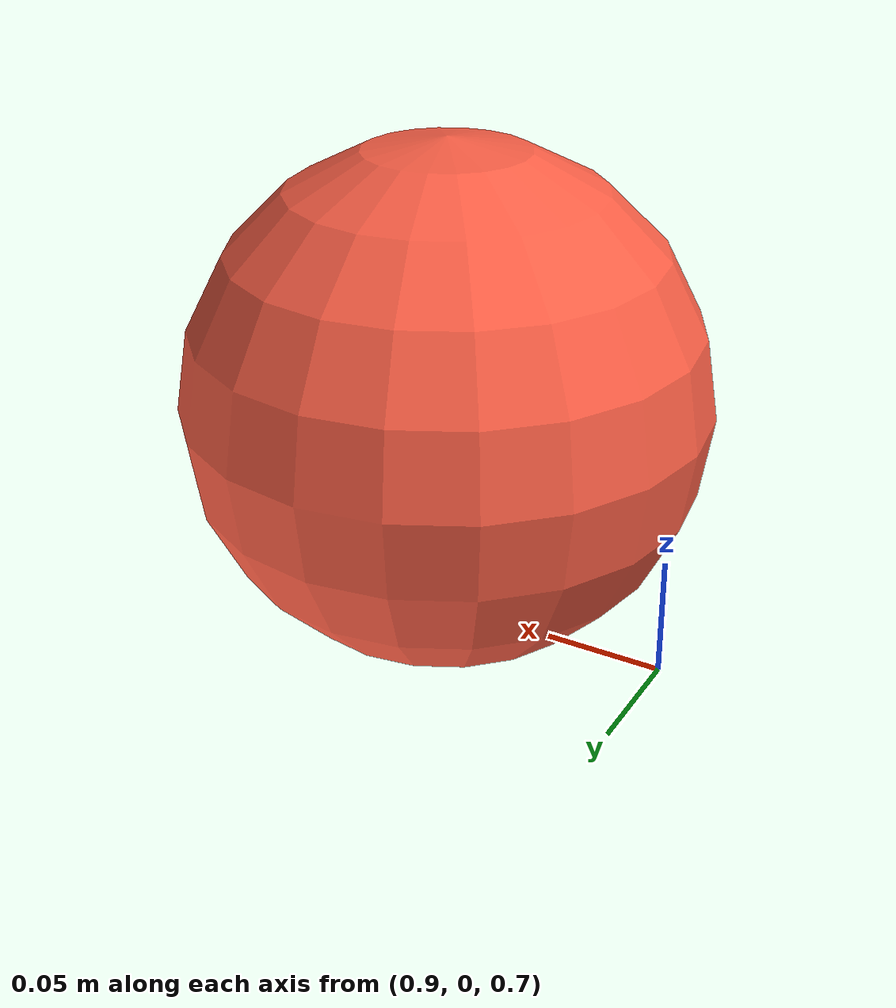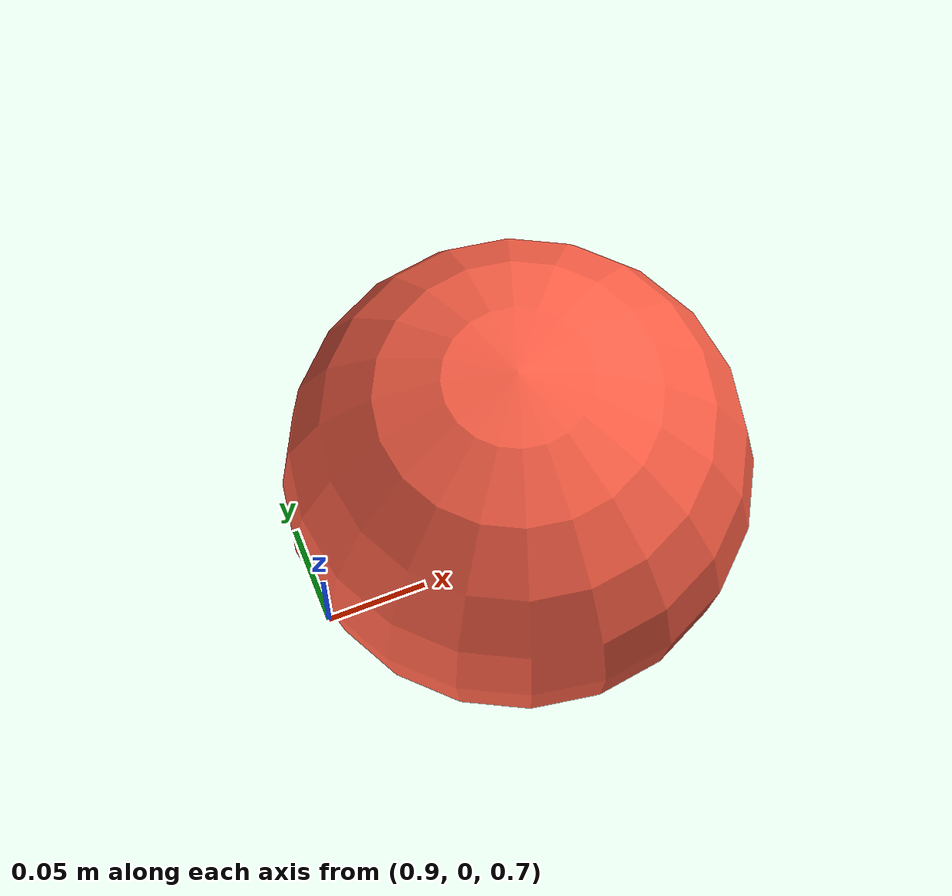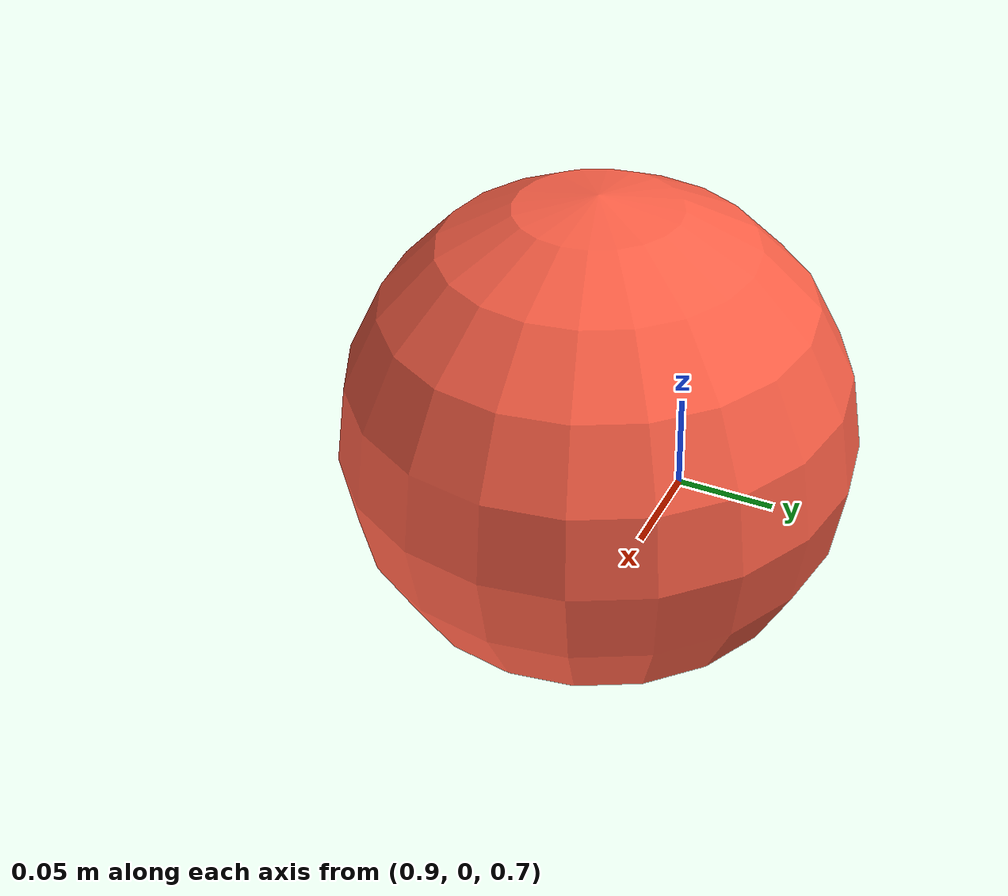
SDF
<?xml version="1.0" ?>
<sdf version='1.4'>
  <world name='default'>

    <physics type='ode'>
      <max_step_size>0.001</max_step_size>
      <real_time_factor>1</real_time_factor>
      <real_time_update_rate>1000</real_time_update_rate>
      <gravity>0 0 -9.8</gravity>
    </physics>

    <spherical_coordinates>
      <surface_model>EARTH_WGS84</surface_model>
      <latitude_deg>0</latitude_deg>
      <longitude_deg>0</longitude_deg>
      <elevation>0</elevation>
      <heading_deg>0</heading_deg>
    </spherical_coordinates>

    <!-- A global light source -->
   <scene>
      <sky>
        <clouds>
          <speed>12</speed>
        </clouds>
      </sky>
   </scene>

   <include>
     <uri>model://sun</uri>
   </include>

    <!-- A ground plane -->
    <include>
      <uri>model://ground_plane</uri>
    </include>

    <!-- Please check the spefic rule: http://www.lsse.kyutech.ac.jp/~sociorobo/ja/forestdrone2016r -->
    <model name="red_ball">
      <pose>1.0 0 0.8 0 0 0</pose>
      <static>1</static>
      <link name="band" >
        <pose>0 0 0 0 0 0</pose>
        <inertial>
          <mass>1</mass>
          <inertia>
            <ixx>0.145833</ixx>
            <ixy>0</ixy>
            <ixz>0</ixz>
            <iyy>0.145833</iyy>
            <iyz>0</iyz>
            <izz>0.125</izz>
          </inertia>
          <pose>0 0 0 0 -0 0</pose>
        </inertial>
        <collision name="collision">
          <geometry>
            <sphere>
              <radius>0.11</radius>
            </sphere>
          </geometry>
        </collision>
        <visual name="visual">
          <geometry>
            <sphere>
              <radius>0.11</radius>
            </sphere>
          </geometry>
          <material>
            <ambient>1.00 0.0 0.0 1</ambient> <!-- red -->
            <diffuse>1.00 0.38 0.28 1</diffuse>
            <specular>0.1 0.1 0.1 1</specular>
            <emissive>0 0 0 0</emissive>
          </material>
        </visual>
      </link>
    </model>

  </world>
</sdf>
